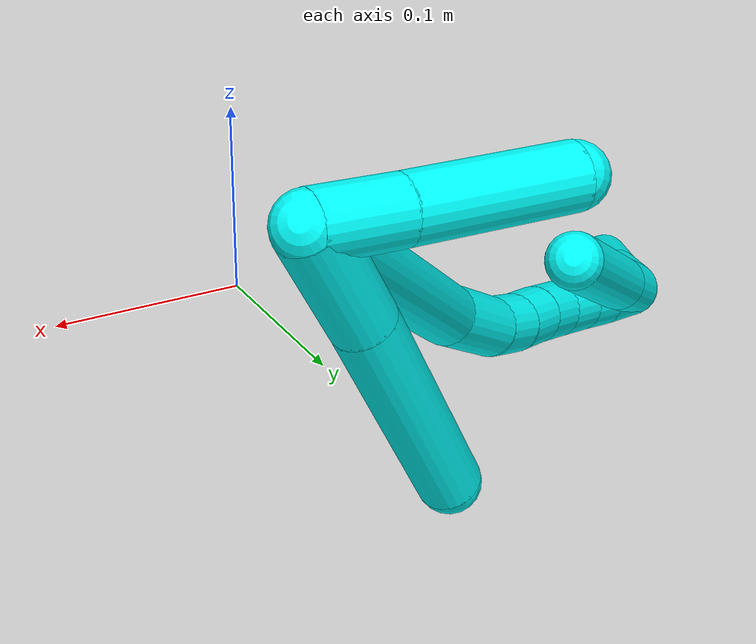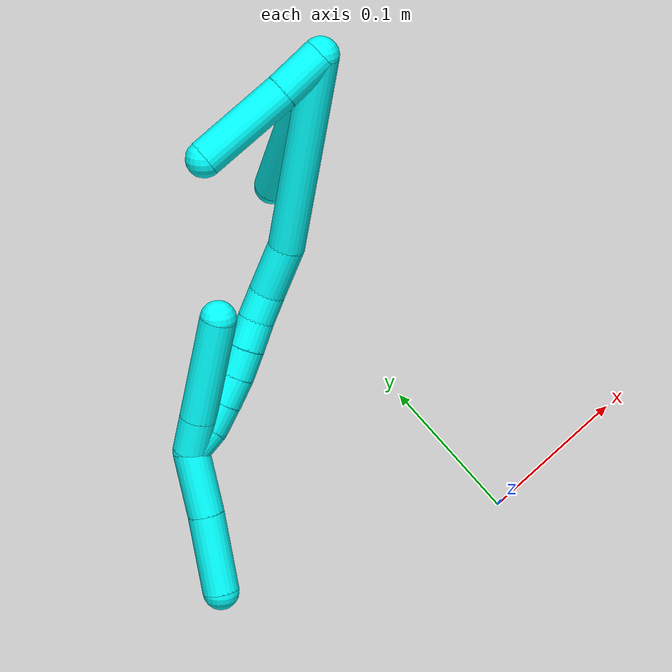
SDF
<sdf version="1.7">
 <world name="default">
  <model name="3">
   <static>0</static>
   <link name="3">
    <collision name="collision-cylinder-e_1_2_8">
     <pose>-0.008455 0.011341 -0.02021 -2.63022 -0.349839 1.18895</pose>
     <geometry><cylinder><radius>0.0125</radius><length>0.049337</length></cylinder></geometry>
     <surface>
      <friction><ode><mu>1.16</mu><mu2>1.16</mu2><slip1>0</slip1><slip2>0</slip2></ode></friction>
      <contact><ode><kp>1e+06</kp><kd>1</kd><max_vel>0</max_vel><min_depth>0.001</min_depth></ode></contact>
     </surface>
    </collision>
    <visual name="visual-cylinder-e_1_2_8">
     <pose>-0.008455 0.011341 -0.02021 -2.63022 -0.349839 1.18895</pose>
     <geometry><cylinder><radius>0.0125</radius><length>0.049337</length></cylinder></geometry>
     <material><ambient>0.003922 1 0.996078 1</ambient></material>
    </visual>
    <collision name="collision-cylinder-e_2_8_6">
     <pose>-0.033395 0.046552 -0.08155 -2.61574 -0.333693 1.11821</pose>
     <geometry><cylinder><radius>0.0125</radius><length>0.100663</length></cylinder></geometry>
     <surface>
      <friction><ode><mu>1.16</mu><mu2>1.16</mu2><slip1>0</slip1><slip2>0</slip2></ode></friction>
      <contact><ode><kp>1e+06</kp><kd>1</kd><max_vel>0</max_vel><min_depth>0.001</min_depth></ode></contact>
     </surface>
    </collision>
    <visual name="visual-cylinder-e_2_8_6">
     <pose>-0.033395 0.046552 -0.08155 -2.61574 -0.333693 1.11821</pose>
     <geometry><cylinder><radius>0.0125</radius><length>0.100663</length></cylinder></geometry>
     <material><ambient>0.003922 1 0.996078 1</ambient></material>
    </visual>
    <collision name="collision-cylinder-e_1_2_9">
     <pose>-0.011874 -0.007037 -0.009999 2.52832 -0.770782 -1.81614</pose>
     <geometry><cylinder><radius>0.0125</radius><length>0.034087</length></cylinder></geometry>
     <surface>
      <friction><ode><mu>1.16</mu><mu2>1.16</mu2><slip1>0</slip1><slip2>0</slip2></ode></friction>
      <contact><ode><kp>1e+06</kp><kd>1</kd><max_vel>0</max_vel><min_depth>0.001</min_depth></ode></contact>
     </surface>
    </collision>
    <visual name="visual-cylinder-e_1_2_9">
     <pose>-0.011874 -0.007037 -0.009999 2.52832 -0.770782 -1.81614</pose>
     <geometry><cylinder><radius>0.0125</radius><length>0.034087</length></cylinder></geometry>
     <material><ambient>0.003922 1 0.996078 1</ambient></material>
    </visual>
    <collision name="collision-cylinder-e_2_9_5">
     <pose>-0.047557 -0.028364 -0.037747 2.46378 -0.807301 -1.76158</pose>
     <geometry><cylinder><radius>0.0125</radius><length>0.065913</length></cylinder></geometry>
     <surface>
      <friction><ode><mu>1.16</mu><mu2>1.16</mu2><slip1>0</slip1><slip2>0</slip2></ode></friction>
      <contact><ode><kp>1e+06</kp><kd>1</kd><max_vel>0</max_vel><min_depth>0.001</min_depth></ode></contact>
     </surface>
    </collision>
    <visual name="visual-cylinder-e_2_9_5">
     <pose>-0.047557 -0.028364 -0.037747 2.46378 -0.807301 -1.76158</pose>
     <geometry><cylinder><radius>0.0125</radius><length>0.065913</length></cylinder></geometry>
     <material><ambient>0.003922 1 0.996078 1</ambient></material>
    </visual>
    <collision name="collision-cylinder-e_1_2_10">
     <pose>-0.015463 0.004504 -0.069596 -3.07696 -0.218194 2.56764</pose>
     <geometry><cylinder><radius>0.0125</radius><length>0.142871</length></cylinder></geometry>
     <surface>
      <friction><ode><mu>1.16</mu><mu2>1.16</mu2><slip1>0</slip1><slip2>0</slip2></ode></friction>
      <contact><ode><kp>1e+06</kp><kd>1</kd><max_vel>0</max_vel><min_depth>0.001</min_depth></ode></contact>
     </surface>
    </collision>
    <visual name="visual-cylinder-e_1_2_10">
     <pose>-0.015463 0.004504 -0.069596 -3.07696 -0.218194 2.56764</pose>
     <geometry><cylinder><radius>0.0125</radius><length>0.142871</length></cylinder></geometry>
     <material><ambient>0.003922 1 0.996078 1</ambient></material>
    </visual>
    <collision name="collision-cylinder-e_2_10_11">
     <pose>-0.038216 0.008471 -0.155864 3.10936 -0.411994 -2.98762</pose>
     <geometry><cylinder><radius>0.0125</radius><length>0.036408</length></cylinder></geometry>
     <surface>
      <friction><ode><mu>1.16</mu><mu2>1.16</mu2><slip1>0</slip1><slip2>0</slip2></ode></friction>
      <contact><ode><kp>1e+06</kp><kd>1</kd><max_vel>0</max_vel><min_depth>0.001</min_depth></ode></contact>
     </surface>
    </collision>
    <visual name="visual-cylinder-e_2_10_11">
     <pose>-0.038216 0.008471 -0.155864 3.10936 -0.411994 -2.98762</pose>
     <geometry><cylinder><radius>0.0125</radius><length>0.036408</length></cylinder></geometry>
     <material><ambient>0.003922 1 0.996078 1</ambient></material>
    </visual>
    <collision name="collision-cylinder-e_3_11_12">
     <pose>-0.049308 0.005489 -0.181538 2.87649 -0.387098 -1.94688</pose>
     <geometry><cylinder><radius>0.0125</radius><length>0.020145</length></cylinder></geometry>
     <surface>
      <friction><ode><mu>1.16</mu><mu2>1.16</mu2><slip1>0</slip1><slip2>0</slip2></ode></friction>
      <contact><ode><kp>1e+06</kp><kd>1</kd><max_vel>0</max_vel><min_depth>0.001</min_depth></ode></contact>
     </surface>
    </collision>
    <visual name="visual-cylinder-e_3_11_12">
     <pose>-0.049308 0.005489 -0.181538 2.87649 -0.387098 -1.94688</pose>
     <geometry><cylinder><radius>0.0125</radius><length>0.020145</length></cylinder></geometry>
     <material><ambient>0.003922 1 0.996078 1</ambient></material>
    </visual>
    <collision name="collision-cylinder-e_4_12_13">
     <pose>-0.0564 -0.000281 -0.199574 2.78881 -0.32919 -1.50029</pose>
     <geometry><cylinder><radius>0.0125</radius><length>0.020347</length></cylinder></geometry>
     <surface>
      <friction><ode><mu>1.16</mu><mu2>1.16</mu2><slip1>0</slip1><slip2>0</slip2></ode></friction>
      <contact><ode><kp>1e+06</kp><kd>1</kd><max_vel>0</max_vel><min_depth>0.001</min_depth></ode></contact>
     </surface>
    </collision>
    <visual name="visual-cylinder-e_4_12_13">
     <pose>-0.0564 -0.000281 -0.199574 2.78881 -0.32919 -1.50029</pose>
     <geometry><cylinder><radius>0.0125</radius><length>0.020347</length></cylinder></geometry>
     <material><ambient>0.003922 1 0.996078 1</ambient></material>
    </visual>
    <collision name="collision-cylinder-e_5_13_14">
     <pose>-0.063183 -0.006522 -0.217607 2.82833 -0.353834 -1.69454</pose>
     <geometry><cylinder><radius>0.0125</radius><length>0.020169</length></cylinder></geometry>
     <surface>
      <friction><ode><mu>1.16</mu><mu2>1.16</mu2><slip1>0</slip1><slip2>0</slip2></ode></friction>
      <contact><ode><kp>1e+06</kp><kd>1</kd><max_vel>0</max_vel><min_depth>0.001</min_depth></ode></contact>
     </surface>
    </collision>
    <visual name="visual-cylinder-e_5_13_14">
     <pose>-0.063183 -0.006522 -0.217607 2.82833 -0.353834 -1.69454</pose>
     <geometry><cylinder><radius>0.0125</radius><length>0.020169</length></cylinder></geometry>
     <material><ambient>0.003922 1 0.996078 1</ambient></material>
    </visual>
    <collision name="collision-cylinder-e_6_14_15">
     <pose>-0.07089 -0.012599 -0.235129 2.78633 -0.433957 -1.77472</pose>
     <geometry><cylinder><radius>0.0125</radius><length>0.020038</length></cylinder></geometry>
     <surface>
      <friction><ode><mu>1.16</mu><mu2>1.16</mu2><slip1>0</slip1><slip2>0</slip2></ode></friction>
      <contact><ode><kp>1e+06</kp><kd>1</kd><max_vel>0</max_vel><min_depth>0.001</min_depth></ode></contact>
     </surface>
    </collision>
    <visual name="visual-cylinder-e_6_14_15">
     <pose>-0.07089 -0.012599 -0.235129 2.78633 -0.433957 -1.77472</pose>
     <geometry><cylinder><radius>0.0125</radius><length>0.020038</length></cylinder></geometry>
     <material><ambient>0.003922 1 0.996078 1</ambient></material>
    </visual>
    <collision name="collision-cylinder-e_7_15_16">
     <pose>-0.07958 -0.01887 -0.252041 2.78674 -0.464048 -1.84326</pose>
     <geometry><cylinder><radius>0.0125</radius><length>0.020008</length></cylinder></geometry>
     <surface>
      <friction><ode><mu>1.16</mu><mu2>1.16</mu2><slip1>0</slip1><slip2>0</slip2></ode></friction>
      <contact><ode><kp>1e+06</kp><kd>1</kd><max_vel>0</max_vel><min_depth>0.001</min_depth></ode></contact>
     </surface>
    </collision>
    <visual name="visual-cylinder-e_7_15_16">
     <pose>-0.07958 -0.01887 -0.252041 2.78674 -0.464048 -1.84326</pose>
     <geometry><cylinder><radius>0.0125</radius><length>0.020008</length></cylinder></geometry>
     <material><ambient>0.003922 1 0.996078 1</ambient></material>
    </visual>
    <collision name="collision-cylinder-e_8_16_1">
     <pose>-0.090181 -0.026405 -0.26699 2.54798 -0.6585 -1.68141</pose>
     <geometry><cylinder><radius>0.0125</radius><length>0.020014</length></cylinder></geometry>
     <surface>
      <friction><ode><mu>1.16</mu><mu2>1.16</mu2><slip1>0</slip1><slip2>0</slip2></ode></friction>
      <contact><ode><kp>1e+06</kp><kd>1</kd><max_vel>0</max_vel><min_depth>0.001</min_depth></ode></contact>
     </surface>
    </collision>
    <visual name="visual-cylinder-e_8_16_1">
     <pose>-0.090181 -0.026405 -0.26699 2.54798 -0.6585 -1.68141</pose>
     <geometry><cylinder><radius>0.0125</radius><length>0.020014</length></cylinder></geometry>
     <material><ambient>0.003922 1 0.996078 1</ambient></material>
    </visual>
    <collision name="collision-cylinder-e_1_1_17">
     <pose>-0.091651 -0.035414 -0.295002 2.93116 0.209025 1.56403</pose>
     <geometry><cylinder><radius>0.0125</radius><length>0.044846</length></cylinder></geometry>
     <surface>
      <friction><ode><mu>1.16</mu><mu2>1.16</mu2><slip1>0</slip1><slip2>0</slip2></ode></friction>
      <contact><ode><kp>1e+06</kp><kd>1</kd><max_vel>0</max_vel><min_depth>0.001</min_depth></ode></contact>
     </surface>
    </collision>
    <visual name="visual-cylinder-e_1_1_17">
     <pose>-0.091651 -0.035414 -0.295002 2.93116 0.209025 1.56403</pose>
     <geometry><cylinder><radius>0.0125</radius><length>0.044846</length></cylinder></geometry>
     <material><ambient>0.003922 1 0.996078 1</ambient></material>
    </visual>
    <collision name="collision-cylinder-e_2_17_4">
     <pose>-0.082284 -0.046198 -0.342907 2.91129 0.171784 1.27986</pose>
     <geometry><cylinder><radius>0.0125</radius><length>0.055154</length></cylinder></geometry>
     <surface>
      <friction><ode><mu>1.16</mu><mu2>1.16</mu2><slip1>0</slip1><slip2>0</slip2></ode></friction>
      <contact><ode><kp>1e+06</kp><kd>1</kd><max_vel>0</max_vel><min_depth>0.001</min_depth></ode></contact>
     </surface>
    </collision>
    <visual name="visual-cylinder-e_2_17_4">
     <pose>-0.082284 -0.046198 -0.342907 2.91129 0.171784 1.27986</pose>
     <geometry><cylinder><radius>0.0125</radius><length>0.055154</length></cylinder></geometry>
     <material><ambient>0.003922 1 0.996078 1</ambient></material>
    </visual>
    <collision name="collision-cylinder-e_1_1_18">
     <pose>-0.093243 -0.030228 -0.261281 -0.049172 0.244217 -0.006036</pose>
     <geometry><cylinder><radius>0.0125</radius><length>0.025322</length></cylinder></geometry>
     <surface>
      <friction><ode><mu>1.16</mu><mu2>1.16</mu2><slip1>0</slip1><slip2>0</slip2></ode></friction>
      <contact><ode><kp>1e+06</kp><kd>1</kd><max_vel>0</max_vel><min_depth>0.001</min_depth></ode></contact>
     </surface>
    </collision>
    <visual name="visual-cylinder-e_1_1_18">
     <pose>-0.093243 -0.030228 -0.261281 -0.049172 0.244217 -0.006036</pose>
     <geometry><cylinder><radius>0.0125</radius><length>0.025322</length></cylinder></geometry>
     <material><ambient>0.003922 1 0.996078 1</ambient></material>
    </visual>
    <collision name="collision-cylinder-e_2_18_3">
     <pose>-0.081307 -0.028467 -0.21276 -0.031909 0.239977 -0.003848</pose>
     <geometry><cylinder><radius>0.0125</radius><length>0.074678</length></cylinder></geometry>
     <surface>
      <friction><ode><mu>1.16</mu><mu2>1.16</mu2><slip1>0</slip1><slip2>0</slip2></ode></friction>
      <contact><ode><kp>1e+06</kp><kd>1</kd><max_vel>0</max_vel><min_depth>0.001</min_depth></ode></contact>
     </surface>
    </collision>
    <visual name="visual-cylinder-e_2_18_3">
     <pose>-0.081307 -0.028467 -0.21276 -0.031909 0.239977 -0.003848</pose>
     <geometry><cylinder><radius>0.0125</radius><length>0.074678</length></cylinder></geometry>
     <material><ambient>0.003922 1 0.996078 1</ambient></material>
    </visual>
    <collision name="collision-sphere-3">
     <pose>-0.072432 -0.02731 -0.176509 0 -0 0</pose>
     <geometry><sphere><radius>0.0125</radius></sphere></geometry>
     <surface>
      <friction><ode><mu>1.16</mu><mu2>1.16</mu2><slip1>0</slip1><slip2>0</slip2></ode></friction>
      <contact><ode><kp>1e+06</kp><kd>1</kd><max_vel>0</max_vel><min_depth>0.001</min_depth></ode></contact>
     </surface>
    </collision>
    <visual name="visual-sphere-3">
     <pose>-0.072432 -0.02731 -0.176509 0 -0 0</pose>
     <geometry><sphere><radius>0.0125</radius></sphere></geometry>
     <material><ambient>0.003922 1 0.996078 1</ambient></material>
    </visual>
    <collision name="collision-sphere-10">
     <pose>-0.030927 0.009008 -0.139192 0 -0 0</pose>
     <geometry><sphere><radius>0.0125</radius></sphere></geometry>
     <surface>
      <friction><ode><mu>1.16</mu><mu2>1.16</mu2><slip1>0</slip1><slip2>0</slip2></ode></friction>
      <contact><ode><kp>1e+06</kp><kd>1</kd><max_vel>0</max_vel><min_depth>0.001</min_depth></ode></contact>
     </surface>
    </collision>
    <visual name="visual-sphere-10">
     <pose>-0.030927 0.009008 -0.139192 0 -0 0</pose>
     <geometry><sphere><radius>0.0125</radius></sphere></geometry>
     <material><ambient>0.003922 1 0.996078 1</ambient></material>
    </visual>
    <collision name="collision-sphere-5">
     <pose>-0.071365 -0.042654 -0.055498 0 -0 0</pose>
     <geometry><sphere><radius>0.0125</radius></sphere></geometry>
     <surface>
      <friction><ode><mu>1.16</mu><mu2>1.16</mu2><slip1>0</slip1><slip2>0</slip2></ode></friction>
      <contact><ode><kp>1e+06</kp><kd>1</kd><max_vel>0</max_vel><min_depth>0.001</min_depth></ode></contact>
     </surface>
    </collision>
    <visual name="visual-sphere-5">
     <pose>-0.071365 -0.042654 -0.055498 0 -0 0</pose>
     <geometry><sphere><radius>0.0125</radius></sphere></geometry>
     <material><ambient>0.003922 1 0.996078 1</ambient></material>
    </visual>
    <collision name="collision-sphere-6">
     <pose>-0.049881 0.070422 -0.12268 0 -0 0</pose>
     <geometry><sphere><radius>0.0125</radius></sphere></geometry>
     <surface>
      <friction><ode><mu>1.16</mu><mu2>1.16</mu2><slip1>0</slip1><slip2>0</slip2></ode></friction>
      <contact><ode><kp>1e+06</kp><kd>1</kd><max_vel>0</max_vel><min_depth>0.001</min_depth></ode></contact>
     </surface>
    </collision>
    <visual name="visual-sphere-6">
     <pose>-0.049881 0.070422 -0.12268 0 -0 0</pose>
     <geometry><sphere><radius>0.0125</radius></sphere></geometry>
     <material><ambient>0.003922 1 0.996078 1</ambient></material>
    </visual>
    <collision name="collision-sphere-9">
     <pose>-0.023749 -0.014074 -0.019997 0 -0 0</pose>
     <geometry><sphere><radius>0.0125</radius></sphere></geometry>
     <surface>
      <friction><ode><mu>1.16</mu><mu2>1.16</mu2><slip1>0</slip1><slip2>0</slip2></ode></friction>
      <contact><ode><kp>1e+06</kp><kd>1</kd><max_vel>0</max_vel><min_depth>0.001</min_depth></ode></contact>
     </surface>
    </collision>
    <visual name="visual-sphere-9">
     <pose>-0.023749 -0.014074 -0.019997 0 -0 0</pose>
     <geometry><sphere><radius>0.0125</radius></sphere></geometry>
     <material><ambient>0.003922 1 0.996078 1</ambient></material>
    </visual>
    <collision name="collision-sphere-2">
     <geometry><sphere><radius>0.0125</radius></sphere></geometry>
     <surface>
      <friction><ode><mu>1.16</mu><mu2>1.16</mu2><slip1>0</slip1><slip2>0</slip2></ode></friction>
      <contact><ode><kp>1e+06</kp><kd>1</kd><max_vel>0</max_vel><min_depth>0.001</min_depth></ode></contact>
     </surface>
    </collision>
    <visual name="visual-sphere-2">
     <geometry><sphere><radius>0.0125</radius></sphere></geometry>
     <material><ambient>0.003922 1 0.996078 1</ambient></material>
    </visual>
    <collision name="collision-sphere-8">
     <pose>-0.01691 0.022682 -0.04042 0 -0 0</pose>
     <geometry><sphere><radius>0.0125</radius></sphere></geometry>
     <surface>
      <friction><ode><mu>1.16</mu><mu2>1.16</mu2><slip1>0</slip1><slip2>0</slip2></ode></friction>
      <contact><ode><kp>1e+06</kp><kd>1</kd><max_vel>0</max_vel><min_depth>0.001</min_depth></ode></contact>
     </surface>
    </collision>
    <visual name="visual-sphere-8">
     <pose>-0.01691 0.022682 -0.04042 0 -0 0</pose>
     <geometry><sphere><radius>0.0125</radius></sphere></geometry>
     <material><ambient>0.003922 1 0.996078 1</ambient></material>
    </visual>
    <collision name="collision-sphere-11">
     <pose>-0.045506 0.007933 -0.172536 0 -0 0</pose>
     <geometry><sphere><radius>0.0125</radius></sphere></geometry>
     <surface>
      <friction><ode><mu>1.16</mu><mu2>1.16</mu2><slip1>0</slip1><slip2>0</slip2></ode></friction>
      <contact><ode><kp>1e+06</kp><kd>1</kd><max_vel>0</max_vel><min_depth>0.001</min_depth></ode></contact>
     </surface>
    </collision>
    <visual name="visual-sphere-11">
     <pose>-0.045506 0.007933 -0.172536 0 -0 0</pose>
     <geometry><sphere><radius>0.0125</radius></sphere></geometry>
     <material><ambient>0.003922 1 0.996078 1</ambient></material>
    </visual>
    <collision name="collision-sphere-12">
     <pose>-0.053111 0.003045 -0.190539 0 -0 0</pose>
     <geometry><sphere><radius>0.0125</radius></sphere></geometry>
     <surface>
      <friction><ode><mu>1.16</mu><mu2>1.16</mu2><slip1>0</slip1><slip2>0</slip2></ode></friction>
      <contact><ode><kp>1e+06</kp><kd>1</kd><max_vel>0</max_vel><min_depth>0.001</min_depth></ode></contact>
     </surface>
    </collision>
    <visual name="visual-sphere-12">
     <pose>-0.053111 0.003045 -0.190539 0 -0 0</pose>
     <geometry><sphere><radius>0.0125</radius></sphere></geometry>
     <material><ambient>0.003922 1 0.996078 1</ambient></material>
    </visual>
    <collision name="collision-sphere-13">
     <pose>-0.059688 -0.003607 -0.208608 0 -0 0</pose>
     <geometry><sphere><radius>0.0125</radius></sphere></geometry>
     <surface>
      <friction><ode><mu>1.16</mu><mu2>1.16</mu2><slip1>0</slip1><slip2>0</slip2></ode></friction>
      <contact><ode><kp>1e+06</kp><kd>1</kd><max_vel>0</max_vel><min_depth>0.001</min_depth></ode></contact>
     </surface>
    </collision>
    <visual name="visual-sphere-13">
     <pose>-0.059688 -0.003607 -0.208608 0 -0 0</pose>
     <geometry><sphere><radius>0.0125</radius></sphere></geometry>
     <material><ambient>0.003922 1 0.996078 1</ambient></material>
    </visual>
    <collision name="collision-sphere-14">
     <pose>-0.066677 -0.009437 -0.226607 0 -0 0</pose>
     <geometry><sphere><radius>0.0125</radius></sphere></geometry>
     <surface>
      <friction><ode><mu>1.16</mu><mu2>1.16</mu2><slip1>0</slip1><slip2>0</slip2></ode></friction>
      <contact><ode><kp>1e+06</kp><kd>1</kd><max_vel>0</max_vel><min_depth>0.001</min_depth></ode></contact>
     </surface>
    </collision>
    <visual name="visual-sphere-14">
     <pose>-0.066677 -0.009437 -0.226607 0 -0 0</pose>
     <geometry><sphere><radius>0.0125</radius></sphere></geometry>
     <material><ambient>0.003922 1 0.996078 1</ambient></material>
    </visual>
    <collision name="collision-sphere-15">
     <pose>-0.075102 -0.015762 -0.243652 0 -0 0</pose>
     <geometry><sphere><radius>0.0125</radius></sphere></geometry>
     <surface>
      <friction><ode><mu>1.16</mu><mu2>1.16</mu2><slip1>0</slip1><slip2>0</slip2></ode></friction>
      <contact><ode><kp>1e+06</kp><kd>1</kd><max_vel>0</max_vel><min_depth>0.001</min_depth></ode></contact>
     </surface>
    </collision>
    <visual name="visual-sphere-15">
     <pose>-0.075102 -0.015762 -0.243652 0 -0 0</pose>
     <geometry><sphere><radius>0.0125</radius></sphere></geometry>
     <material><ambient>0.003922 1 0.996078 1</ambient></material>
    </visual>
    <collision name="collision-sphere-16">
     <pose>-0.084057 -0.021978 -0.26043 0 -0 0</pose>
     <geometry><sphere><radius>0.0125</radius></sphere></geometry>
     <surface>
      <friction><ode><mu>1.16</mu><mu2>1.16</mu2><slip1>0</slip1><slip2>0</slip2></ode></friction>
      <contact><ode><kp>1e+06</kp><kd>1</kd><max_vel>0</max_vel><min_depth>0.001</min_depth></ode></contact>
     </surface>
    </collision>
    <visual name="visual-sphere-16">
     <pose>-0.084057 -0.021978 -0.26043 0 -0 0</pose>
     <geometry><sphere><radius>0.0125</radius></sphere></geometry>
     <material><ambient>0.003922 1 0.996078 1</ambient></material>
    </visual>
    <collision name="collision-sphere-1">
     <pose>-0.096304 -0.030832 -0.273551 0 -0 0</pose>
     <geometry><sphere><radius>0.0125</radius></sphere></geometry>
     <surface>
      <friction><ode><mu>1.16</mu><mu2>1.16</mu2><slip1>0</slip1><slip2>0</slip2></ode></friction>
      <contact><ode><kp>1e+06</kp><kd>1</kd><max_vel>0</max_vel><min_depth>0.001</min_depth></ode></contact>
     </surface>
    </collision>
    <visual name="visual-sphere-1">
     <pose>-0.096304 -0.030832 -0.273551 0 -0 0</pose>
     <geometry><sphere><radius>0.0125</radius></sphere></geometry>
     <material><ambient>0.003922 1 0.996078 1</ambient></material>
    </visual>
    <collision name="collision-sphere-18">
     <pose>-0.090182 -0.029625 -0.24901 0 -0 0</pose>
     <geometry><sphere><radius>0.0125</radius></sphere></geometry>
     <surface>
      <friction><ode><mu>1.16</mu><mu2>1.16</mu2><slip1>0</slip1><slip2>0</slip2></ode></friction>
      <contact><ode><kp>1e+06</kp><kd>1</kd><max_vel>0</max_vel><min_depth>0.001</min_depth></ode></contact>
     </surface>
    </collision>
    <visual name="visual-sphere-18">
     <pose>-0.090182 -0.029625 -0.24901 0 -0 0</pose>
     <geometry><sphere><radius>0.0125</radius></sphere></geometry>
     <material><ambient>0.003922 1 0.996078 1</ambient></material>
    </visual>
    <collision name="collision-sphere-17">
     <pose>-0.086998 -0.039996 -0.316453 0 -0 0</pose>
     <geometry><sphere><radius>0.0125</radius></sphere></geometry>
     <surface>
      <friction><ode><mu>1.16</mu><mu2>1.16</mu2><slip1>0</slip1><slip2>0</slip2></ode></friction>
      <contact><ode><kp>1e+06</kp><kd>1</kd><max_vel>0</max_vel><min_depth>0.001</min_depth></ode></contact>
     </surface>
    </collision>
    <visual name="visual-sphere-17">
     <pose>-0.086998 -0.039996 -0.316453 0 -0 0</pose>
     <geometry><sphere><radius>0.0125</radius></sphere></geometry>
     <material><ambient>0.003922 1 0.996078 1</ambient></material>
    </visual>
    <collision name="collision-sphere-4">
     <pose>-0.07757 -0.052401 -0.36936 0 -0 0</pose>
     <geometry><sphere><radius>0.0125</radius></sphere></geometry>
     <surface>
      <friction><ode><mu>1.16</mu><mu2>1.16</mu2><slip1>0</slip1><slip2>0</slip2></ode></friction>
      <contact><ode><kp>1e+06</kp><kd>1</kd><max_vel>0</max_vel><min_depth>0.001</min_depth></ode></contact>
     </surface>
    </collision>
    <visual name="visual-sphere-4">
     <pose>-0.07757 -0.052401 -0.36936 0 -0 0</pose>
     <geometry><sphere><radius>0.0125</radius></sphere></geometry>
     <material><ambient>0.003922 1 0.996078 1</ambient></material>
    </visual>
    <inertial>
     <pose>-0.048311 -0.0055 -0.146006 0 -0 0</pose>
     <mass>0.75</mass>
     <inertia><ixx>6.9e-05</ixx><ixy>0</ixy><ixz>0</ixz><iyy>0.000461</iyy><iyz>0</iyz><izz>2.3e-05</izz></inertia>
    </inertial>
   </link>
   <pose>0.100363 0.288566 0.164977 -1.03031 -0.13874 -0.769222</pose>
  </model>
 </world>
</sdf>
